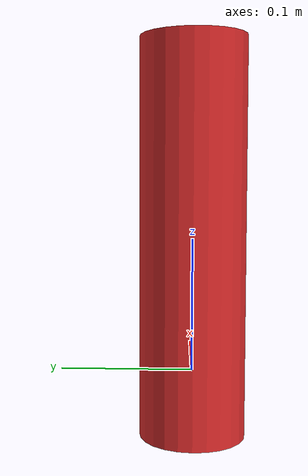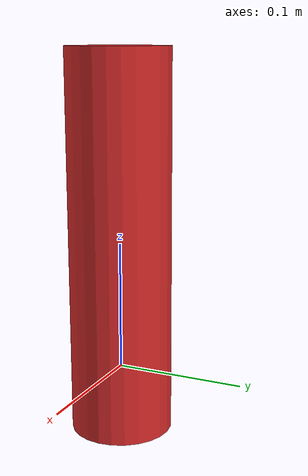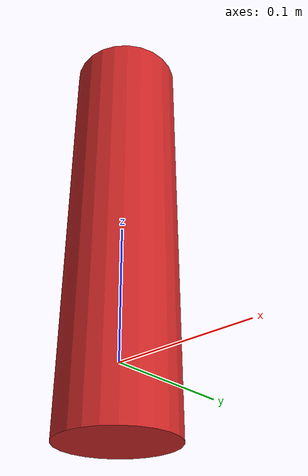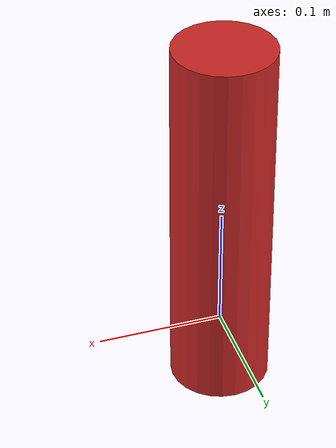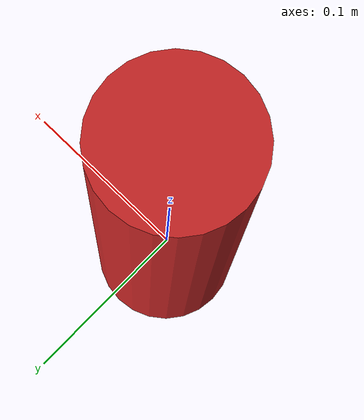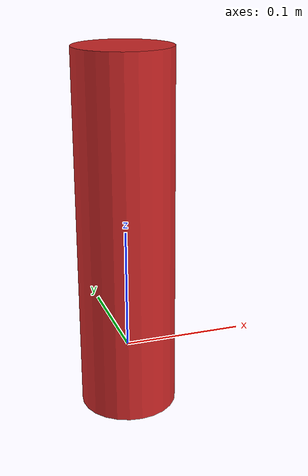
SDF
<?xml version="1.0" ?>
<sdf version="1.5">
  <model name="red_cylinder">
    <pose>0 0 0.1 0 0 0</pose>
    <link name="link">
      <inertial>
        <mass>0.150</mass>
        <inertia>
          <ixx>0.00056</ixx>
          <ixy>0</ixy>
          <ixz>0</ixz>
          <iyy>0.00056</iyy>
          <iyz>0</iyz>
          <izz>0.00012</izz>
        </inertia>
      </inertial>

      <visual name="visual">
        <geometry>
          <cylinder>
            <radius>0.04</radius>
            <length>0.3</length>
          </cylinder>
        </geometry>
        <material>
          <script>
            <uri>file://media/materials/scripts/gazebo.material</uri>
            <name>Gazebo/Red</name>
          </script>
          <emissive>1 0 0 1</emissive>
        </material>
      </visual>

      <collision name="collision">
        <geometry>
          <cylinder>
            <radius>0.04</radius>
            <length>0.2</length>
          </cylinder>
        </geometry>
        <surface>
          <friction>
            <ode>
              <mu>1.0</mu>
              <mu2>1.0</mu2>
            </ode>
          </friction>
          <contact>
            <ode>
              <kp>1000000.0</kp>
              <kd>1.0</kd>
              <max_vel>0.1</max_vel>
              <min_depth>0.001</min_depth>
            </ode>
          </contact>
        </surface>
      </collision>
    </link>
  </model>
</sdf>
